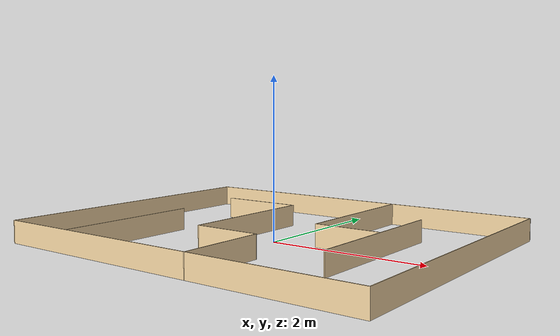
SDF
<?xml version='1.0'?>
<sdf version='1.6'>
  <model name='maze_3'>
    <link name='Wall_10'>
      <pose frame=''>-0.459 0.095453 0 0 0 -1.5708</pose>
      <self_collide>0</self_collide>
      <kinematic>0</kinematic>
      <visual name='Wall_10_Visual'>
        <pose frame=''>0 0 0.14 0 -0 0</pose>
        <geometry>
          <box>
            <size>1.86027 0.01 0.28</size>
          </box>
        </geometry>
        <material>
          <script>
            <uri>file://media/materials/scripts/gazebo.material</uri>
            <name>Gazebo/Grey</name>
          </script>
          <ambient>0.921569 0.807843 0.615686 1</ambient>
          <diffuse>0.7 0.7 0.7 1</diffuse>
          <specular>0.01 0.01 0.01 1</specular>
          <emissive>0 0 0 1</emissive>
        </material>
        <cast_shadows>1</cast_shadows>
        <transparency>0</transparency>
      </visual>
      <collision name='Wall_10_Collision'>
        <laser_retro>0</laser_retro>
        <max_contacts>10</max_contacts>
        <pose frame=''>0 0 0.14 0 -0 0</pose>
        <geometry>
          <box>
            <size>1.86027 0.01 0.28</size>
          </box>
        </geometry>
        <surface>
          <friction>
            <ode>
              <mu>1</mu>
              <mu2>1</mu2>
              <fdir1>0 0 0</fdir1>
              <slip1>0</slip1>
              <slip2>0</slip2>
            </ode>
            <torsional>
              <coefficient>1</coefficient>
              <patch_radius>0</patch_radius>
              <surface_radius>0</surface_radius>
              <use_patch_radius>1</use_patch_radius>
              <ode>
                <slip>0</slip>
              </ode>
            </torsional>
          </friction>
          <bounce>
            <restitution_coefficient>0</restitution_coefficient>
            <threshold>1e+06</threshold>
          </bounce>
          <contact>
            <collide_without_contact>0</collide_without_contact>
            <collide_without_contact_bitmask>1</collide_without_contact_bitmask>
            <collide_bitmask>1</collide_bitmask>
            <ode>
              <soft_cfm>0</soft_cfm>
              <soft_erp>0.2</soft_erp>
              <kp>1e+13</kp>
              <kd>1</kd>
              <max_vel>0.01</max_vel>
              <min_depth>0</min_depth>
            </ode>
            <bullet>
              <split_impulse>1</split_impulse>
              <split_impulse_penetration_threshold>-0.01</split_impulse_penetration_threshold>
              <soft_cfm>0</soft_cfm>
              <soft_erp>0.2</soft_erp>
              <kp>1e+13</kp>
              <kd>1</kd>
            </bullet>
          </contact>
        </surface>
      </collision>
    </link>
    <link name='Wall_11'>
      <pose frame=''>-0.034 -0.829547 0 0 -0 0</pose>
      <self_collide>0</self_collide>
      <kinematic>0</kinematic>
      <visual name='Wall_11_Visual'>
        <pose frame=''>0 0 0.14 0 -0 0</pose>
        <geometry>
          <box>
            <size>0.860223 0.01 0.28</size>
          </box>
        </geometry>
        <material>
          <script>
            <uri>file://media/materials/scripts/gazebo.material</uri>
            <name>Gazebo/Grey</name>
          </script>
          <ambient>0.921569 0.807843 0.615686 1</ambient>
          <diffuse>0.7 0.7 0.7 1</diffuse>
          <specular>0.01 0.01 0.01 1</specular>
          <emissive>0 0 0 1</emissive>
        </material>
        <cast_shadows>1</cast_shadows>
        <transparency>0</transparency>
      </visual>
      <collision name='Wall_11_Collision'>
        <laser_retro>0</laser_retro>
        <max_contacts>10</max_contacts>
        <pose frame=''>0 0 0.14 0 -0 0</pose>
        <geometry>
          <box>
            <size>0.860223 0.01 0.28</size>
          </box>
        </geometry>
        <surface>
          <friction>
            <ode>
              <mu>1</mu>
              <mu2>1</mu2>
              <fdir1>0 0 0</fdir1>
              <slip1>0</slip1>
              <slip2>0</slip2>
            </ode>
            <torsional>
              <coefficient>1</coefficient>
              <patch_radius>0</patch_radius>
              <surface_radius>0</surface_radius>
              <use_patch_radius>1</use_patch_radius>
              <ode>
                <slip>0</slip>
              </ode>
            </torsional>
          </friction>
          <bounce>
            <restitution_coefficient>0</restitution_coefficient>
            <threshold>1e+06</threshold>
          </bounce>
          <contact>
            <collide_without_contact>0</collide_without_contact>
            <collide_without_contact_bitmask>1</collide_without_contact_bitmask>
            <collide_bitmask>1</collide_bitmask>
            <ode>
              <soft_cfm>0</soft_cfm>
              <soft_erp>0.2</soft_erp>
              <kp>1e+13</kp>
              <kd>1</kd>
              <max_vel>0.01</max_vel>
              <min_depth>0</min_depth>
            </ode>
            <bullet>
              <split_impulse>1</split_impulse>
              <split_impulse_penetration_threshold>-0.01</split_impulse_penetration_threshold>
              <soft_cfm>0</soft_cfm>
              <soft_erp>0.2</soft_erp>
              <kp>1e+13</kp>
              <kd>1</kd>
            </bullet>
          </contact>
        </surface>
      </collision>
    </link>
    <link name='Wall_12'>
      <pose frame=''>0.391 -1.37955 0 0 0 -1.5708</pose>
      <self_collide>0</self_collide>
      <kinematic>0</kinematic>
      <visual name='Wall_12_Visual'>
        <pose frame=''>0 0 0.14 0 -0 0</pose>
        <geometry>
          <box>
            <size>1.11027 0.01 0.28</size>
          </box>
        </geometry>
        <material>
          <script>
            <uri>file://media/materials/scripts/gazebo.material</uri>
            <name>Gazebo/Grey</name>
          </script>
          <ambient>0.921569 0.807843 0.615686 1</ambient>
          <diffuse>0.7 0.7 0.7 1</diffuse>
          <specular>0.01 0.01 0.01 1</specular>
          <emissive>0 0 0 1</emissive>
        </material>
        <cast_shadows>1</cast_shadows>
        <transparency>0</transparency>
      </visual>
      <collision name='Wall_12_Collision'>
        <laser_retro>0</laser_retro>
        <max_contacts>10</max_contacts>
        <pose frame=''>0 0 0.14 0 -0 0</pose>
        <geometry>
          <box>
            <size>1.11027 0.01 0.28</size>
          </box>
        </geometry>
        <surface>
          <friction>
            <ode>
              <mu>1</mu>
              <mu2>1</mu2>
              <fdir1>0 0 0</fdir1>
              <slip1>0</slip1>
              <slip2>0</slip2>
            </ode>
            <torsional>
              <coefficient>1</coefficient>
              <patch_radius>0</patch_radius>
              <surface_radius>0</surface_radius>
              <use_patch_radius>1</use_patch_radius>
              <ode>
                <slip>0</slip>
              </ode>
            </torsional>
          </friction>
          <bounce>
            <restitution_coefficient>0</restitution_coefficient>
            <threshold>1e+06</threshold>
          </bounce>
          <contact>
            <collide_without_contact>0</collide_without_contact>
            <collide_without_contact_bitmask>1</collide_without_contact_bitmask>
            <collide_bitmask>1</collide_bitmask>
            <ode>
              <soft_cfm>0</soft_cfm>
              <soft_erp>0.2</soft_erp>
              <kp>1e+13</kp>
              <kd>1</kd>
              <max_vel>0.01</max_vel>
              <min_depth>0</min_depth>
            </ode>
            <bullet>
              <split_impulse>1</split_impulse>
              <split_impulse_penetration_threshold>-0.01</split_impulse_penetration_threshold>
              <soft_cfm>0</soft_cfm>
              <soft_erp>0.2</soft_erp>
              <kp>1e+13</kp>
              <kd>1</kd>
            </bullet>
          </contact>
        </surface>
      </collision>
    </link>
    <link name='Wall_14'>
      <pose frame=''>-1.009 1.02045 0 0 -0 3.14159</pose>
      <self_collide>0</self_collide>
      <kinematic>0</kinematic>
      <visual name='Wall_14_Visual'>
        <pose frame=''>0 0 0.14 0 -0 0</pose>
        <geometry>
          <box>
            <size>1.10978 0.01 0.28</size>
          </box>
        </geometry>
        <material>
          <script>
            <uri>file://media/materials/scripts/gazebo.material</uri>
            <name>Gazebo/Grey</name>
          </script>
          <ambient>0.921569 0.807843 0.615686 1</ambient>
          <diffuse>0.7 0.7 0.7 1</diffuse>
          <specular>0.01 0.01 0.01 1</specular>
          <emissive>0 0 0 1</emissive>
        </material>
        <cast_shadows>1</cast_shadows>
        <transparency>0</transparency>
      </visual>
      <collision name='Wall_14_Collision'>
        <laser_retro>0</laser_retro>
        <max_contacts>10</max_contacts>
        <pose frame=''>0 0 0.14 0 -0 0</pose>
        <geometry>
          <box>
            <size>1.10978 0.01 0.28</size>
          </box>
        </geometry>
        <surface>
          <friction>
            <ode>
              <mu>1</mu>
              <mu2>1</mu2>
              <fdir1>0 0 0</fdir1>
              <slip1>0</slip1>
              <slip2>0</slip2>
            </ode>
            <torsional>
              <coefficient>1</coefficient>
              <patch_radius>0</patch_radius>
              <surface_radius>0</surface_radius>
              <use_patch_radius>1</use_patch_radius>
              <ode>
                <slip>0</slip>
              </ode>
            </torsional>
          </friction>
          <bounce>
            <restitution_coefficient>0</restitution_coefficient>
            <threshold>1e+06</threshold>
          </bounce>
          <contact>
            <collide_without_contact>0</collide_without_contact>
            <collide_without_contact_bitmask>1</collide_without_contact_bitmask>
            <collide_bitmask>1</collide_bitmask>
            <ode>
              <soft_cfm>0</soft_cfm>
              <soft_erp>0.2</soft_erp>
              <kp>1e+13</kp>
              <kd>1</kd>
              <max_vel>0.01</max_vel>
              <min_depth>0</min_depth>
            </ode>
            <bullet>
              <split_impulse>1</split_impulse>
              <split_impulse_penetration_threshold>-0.01</split_impulse_penetration_threshold>
              <soft_cfm>0</soft_cfm>
              <soft_erp>0.2</soft_erp>
              <kp>1e+13</kp>
              <kd>1</kd>
            </bullet>
          </contact>
        </surface>
      </collision>
    </link>
    <link name='Wall_2'>
      <pose frame=''>0 -1.92855 0 0 -0 0</pose>
      <self_collide>0</self_collide>
      <kinematic>0</kinematic>
      <visual name='Wall_2_Visual'>
        <pose frame=''>0 0 0.14 0 -0 0</pose>
        <geometry>
          <box>
            <size>4.86 0.01 0.28</size>
          </box>
        </geometry>
        <material>
          <script>
            <uri>file://media/materials/scripts/gazebo.material</uri>
            <name>Gazebo/Grey</name>
          </script>
          <ambient>0.921569 0.807843 0.615686 1</ambient>
          <diffuse>0.7 0.7 0.7 1</diffuse>
          <specular>0.01 0.01 0.01 1</specular>
          <emissive>0 0 0 1</emissive>
        </material>
        <cast_shadows>1</cast_shadows>
        <transparency>0</transparency>
      </visual>
      <collision name='Wall_2_Collision'>
        <laser_retro>0</laser_retro>
        <max_contacts>10</max_contacts>
        <pose frame=''>0 0 0.14 0 -0 0</pose>
        <geometry>
          <box>
            <size>4.86 0.01 0.28</size>
          </box>
        </geometry>
        <surface>
          <friction>
            <ode>
              <mu>1</mu>
              <mu2>1</mu2>
              <fdir1>0 0 0</fdir1>
              <slip1>0</slip1>
              <slip2>0</slip2>
            </ode>
            <torsional>
              <coefficient>1</coefficient>
              <patch_radius>0</patch_radius>
              <surface_radius>0</surface_radius>
              <use_patch_radius>1</use_patch_radius>
              <ode>
                <slip>0</slip>
              </ode>
            </torsional>
          </friction>
          <bounce>
            <restitution_coefficient>0</restitution_coefficient>
            <threshold>1e+06</threshold>
          </bounce>
          <contact>
            <collide_without_contact>0</collide_without_contact>
            <collide_without_contact_bitmask>1</collide_without_contact_bitmask>
            <collide_bitmask>1</collide_bitmask>
            <ode>
              <soft_cfm>0</soft_cfm>
              <soft_erp>0.2</soft_erp>
              <kp>1e+13</kp>
              <kd>1</kd>
              <max_vel>0.01</max_vel>
              <min_depth>0</min_depth>
            </ode>
            <bullet>
              <split_impulse>1</split_impulse>
              <split_impulse_penetration_threshold>-0.01</split_impulse_penetration_threshold>
              <soft_cfm>0</soft_cfm>
              <soft_erp>0.2</soft_erp>
              <kp>1e+13</kp>
              <kd>1</kd>
            </bullet>
          </contact>
        </surface>
      </collision>
    </link>
    <link name='Wall_20'>
      <pose frame=''>1.41726 -0.00158 0 0 0 -1.5708</pose>
      <self_collide>0</self_collide>
      <kinematic>0</kinematic>
      <visual name='Wall_20_Visual'>
        <pose frame=''>0 0 0.14 0 -0 0</pose>
        <geometry>
          <box>
            <size>2.11 0.01 0.28</size>
          </box>
        </geometry>
        <material>
          <script>
            <uri>file://media/materials/scripts/gazebo.material</uri>
            <name>Gazebo/Grey</name>
          </script>
          <ambient>0.921569 0.807843 0.615686 1</ambient>
          <diffuse>0.7 0.7 0.7 1</diffuse>
          <specular>0.01 0.01 0.01 1</specular>
          <emissive>0 0 0 1</emissive>
        </material>
        <cast_shadows>1</cast_shadows>
        <transparency>0</transparency>
      </visual>
      <collision name='Wall_20_Collision'>
        <laser_retro>0</laser_retro>
        <max_contacts>10</max_contacts>
        <pose frame=''>0 0 0.14 0 -0 0</pose>
        <geometry>
          <box>
            <size>2.11 0.01 0.28</size>
          </box>
        </geometry>
        <surface>
          <friction>
            <ode>
              <mu>1</mu>
              <mu2>1</mu2>
              <fdir1>0 0 0</fdir1>
              <slip1>0</slip1>
              <slip2>0</slip2>
            </ode>
            <torsional>
              <coefficient>1</coefficient>
              <patch_radius>0</patch_radius>
              <surface_radius>0</surface_radius>
              <use_patch_radius>1</use_patch_radius>
              <ode>
                <slip>0</slip>
              </ode>
            </torsional>
          </friction>
          <bounce>
            <restitution_coefficient>0</restitution_coefficient>
            <threshold>1e+06</threshold>
          </bounce>
          <contact>
            <collide_without_contact>0</collide_without_contact>
            <collide_without_contact_bitmask>1</collide_without_contact_bitmask>
            <collide_bitmask>1</collide_bitmask>
            <ode>
              <soft_cfm>0</soft_cfm>
              <soft_erp>0.2</soft_erp>
              <kp>1e+13</kp>
              <kd>1</kd>
              <max_vel>0.01</max_vel>
              <min_depth>0</min_depth>
            </ode>
            <bullet>
              <split_impulse>1</split_impulse>
              <split_impulse_penetration_threshold>-0.01</split_impulse_penetration_threshold>
              <soft_cfm>0</soft_cfm>
              <soft_erp>0.2</soft_erp>
              <kp>1e+13</kp>
              <kd>1</kd>
            </bullet>
          </contact>
        </surface>
      </collision>
    </link>
    <link name='Wall_26'>
      <pose frame=''>0.99 0.060386 0 0 -0 3.14159</pose>
      <self_collide>0</self_collide>
      <kinematic>0</kinematic>
      <visual name='Wall_26_Visual'>
        <pose frame=''>0 0 0.14 0 -0 0</pose>
        <geometry>
          <box>
            <size>0.86 0.01 0.28</size>
          </box>
        </geometry>
        <material>
          <script>
            <uri>file://media/materials/scripts/gazebo.material</uri>
            <name>Gazebo/Grey</name>
          </script>
          <ambient>0.921569 0.807843 0.615686 1</ambient>
          <diffuse>0.7 0.7 0.7 1</diffuse>
          <specular>0.01 0.01 0.01 1</specular>
          <emissive>0 0 0 1</emissive>
        </material>
        <cast_shadows>1</cast_shadows>
        <transparency>0</transparency>
      </visual>
      <collision name='Wall_26_Collision'>
        <laser_retro>0</laser_retro>
        <max_contacts>10</max_contacts>
        <pose frame=''>0 0 0.14 0 -0 0</pose>
        <geometry>
          <box>
            <size>0.86 0.01 0.28</size>
          </box>
        </geometry>
        <surface>
          <friction>
            <ode>
              <mu>1</mu>
              <mu2>1</mu2>
              <fdir1>0 0 0</fdir1>
              <slip1>0</slip1>
              <slip2>0</slip2>
            </ode>
            <torsional>
              <coefficient>1</coefficient>
              <patch_radius>0</patch_radius>
              <surface_radius>0</surface_radius>
              <use_patch_radius>1</use_patch_radius>
              <ode>
                <slip>0</slip>
              </ode>
            </torsional>
          </friction>
          <bounce>
            <restitution_coefficient>0</restitution_coefficient>
            <threshold>1e+06</threshold>
          </bounce>
          <contact>
            <collide_without_contact>0</collide_without_contact>
            <collide_without_contact_bitmask>1</collide_without_contact_bitmask>
            <collide_bitmask>1</collide_bitmask>
            <ode>
              <soft_cfm>0</soft_cfm>
              <soft_erp>0.2</soft_erp>
              <kp>1e+13</kp>
              <kd>1</kd>
              <max_vel>0.01</max_vel>
              <min_depth>0</min_depth>
            </ode>
            <bullet>
              <split_impulse>1</split_impulse>
              <split_impulse_penetration_threshold>-0.01</split_impulse_penetration_threshold>
              <soft_cfm>0</soft_cfm>
              <soft_erp>0.2</soft_erp>
              <kp>1e+13</kp>
              <kd>1</kd>
            </bullet>
          </contact>
        </surface>
      </collision>
    </link>
    <link name='Wall_27'>
      <pose frame=''>0.565 0.989946 0 0 -0 1.5708</pose>
      <self_collide>0</self_collide>
      <kinematic>0</kinematic>
      <visual name='Wall_27_Visual'>
        <pose frame=''>0 0 0.14 0 -0 0</pose>
        <geometry>
          <box>
            <size>1.86046 0.01 0.28</size>
          </box>
        </geometry>
        <material>
          <script>
            <uri>file://media/materials/scripts/gazebo.material</uri>
            <name>Gazebo/Grey</name>
          </script>
          <ambient>0.921569 0.807843 0.615686 1</ambient>
          <diffuse>0.7 0.7 0.7 1</diffuse>
          <specular>0.01 0.01 0.01 1</specular>
          <emissive>0 0 0 1</emissive>
        </material>
        <cast_shadows>1</cast_shadows>
        <transparency>0</transparency>
      </visual>
      <collision name='Wall_27_Collision'>
        <laser_retro>0</laser_retro>
        <max_contacts>10</max_contacts>
        <pose frame=''>0 0 0.14 0 -0 0</pose>
        <geometry>
          <box>
            <size>1.86046 0.01 0.28</size>
          </box>
        </geometry>
        <surface>
          <friction>
            <ode>
              <mu>1</mu>
              <mu2>1</mu2>
              <fdir1>0 0 0</fdir1>
              <slip1>0</slip1>
              <slip2>0</slip2>
            </ode>
            <torsional>
              <coefficient>1</coefficient>
              <patch_radius>0</patch_radius>
              <surface_radius>0</surface_radius>
              <use_patch_radius>1</use_patch_radius>
              <ode>
                <slip>0</slip>
              </ode>
            </torsional>
          </friction>
          <bounce>
            <restitution_coefficient>0</restitution_coefficient>
            <threshold>1e+06</threshold>
          </bounce>
          <contact>
            <collide_without_contact>0</collide_without_contact>
            <collide_without_contact_bitmask>1</collide_without_contact_bitmask>
            <collide_bitmask>1</collide_bitmask>
            <ode>
              <soft_cfm>0</soft_cfm>
              <soft_erp>0.2</soft_erp>
              <kp>1e+13</kp>
              <kd>1</kd>
              <max_vel>0.01</max_vel>
              <min_depth>0</min_depth>
            </ode>
            <bullet>
              <split_impulse>1</split_impulse>
              <split_impulse_penetration_threshold>-0.01</split_impulse_penetration_threshold>
              <soft_cfm>0</soft_cfm>
              <soft_erp>0.2</soft_erp>
              <kp>1e+13</kp>
              <kd>1</kd>
            </bullet>
          </contact>
        </surface>
      </collision>
    </link>
    <link name='Wall_3'>
      <pose frame=''>2.425 -0.003547 0 0 -0 1.5708</pose>
      <self_collide>0</self_collide>
      <kinematic>0</kinematic>
      <visual name='Wall_3_Visual'>
        <pose frame=''>0 0 0.14 0 -0 0</pose>
        <geometry>
          <box>
            <size>3.86 0.01 0.28</size>
          </box>
        </geometry>
        <material>
          <script>
            <uri>file://media/materials/scripts/gazebo.material</uri>
            <name>Gazebo/Grey</name>
          </script>
          <ambient>0.921569 0.807843 0.615686 1</ambient>
          <diffuse>0.7 0.7 0.7 1</diffuse>
          <specular>0.01 0.01 0.01 1</specular>
          <emissive>0 0 0 1</emissive>
        </material>
        <cast_shadows>1</cast_shadows>
        <transparency>0</transparency>
      </visual>
      <collision name='Wall_3_Collision'>
        <laser_retro>0</laser_retro>
        <max_contacts>10</max_contacts>
        <pose frame=''>0 0 0.14 0 -0 0</pose>
        <geometry>
          <box>
            <size>3.86 0.01 0.28</size>
          </box>
        </geometry>
        <surface>
          <friction>
            <ode>
              <mu>1</mu>
              <mu2>1</mu2>
              <fdir1>0 0 0</fdir1>
              <slip1>0</slip1>
              <slip2>0</slip2>
            </ode>
            <torsional>
              <coefficient>1</coefficient>
              <patch_radius>0</patch_radius>
              <surface_radius>0</surface_radius>
              <use_patch_radius>1</use_patch_radius>
              <ode>
                <slip>0</slip>
              </ode>
            </torsional>
          </friction>
          <bounce>
            <restitution_coefficient>0</restitution_coefficient>
            <threshold>1e+06</threshold>
          </bounce>
          <contact>
            <collide_without_contact>0</collide_without_contact>
            <collide_without_contact_bitmask>1</collide_without_contact_bitmask>
            <collide_bitmask>1</collide_bitmask>
            <ode>
              <soft_cfm>0</soft_cfm>
              <soft_erp>0.2</soft_erp>
              <kp>1e+13</kp>
              <kd>1</kd>
              <max_vel>0.01</max_vel>
              <min_depth>0</min_depth>
            </ode>
            <bullet>
              <split_impulse>1</split_impulse>
              <split_impulse_penetration_threshold>-0.01</split_impulse_penetration_threshold>
              <soft_cfm>0</soft_cfm>
              <soft_erp>0.2</soft_erp>
              <kp>1e+13</kp>
              <kd>1</kd>
            </bullet>
          </contact>
        </surface>
      </collision>
    </link>
    <link name='Wall_4'>
      <pose frame=''>0 1.92145 0 0 -0 3.14159</pose>
      <self_collide>0</self_collide>
      <kinematic>0</kinematic>
      <visual name='Wall_4_Visual'>
        <pose frame=''>0 0 0.14 0 -0 0</pose>
        <geometry>
          <box>
            <size>4.86 0.01 0.28</size>
          </box>
        </geometry>
        <material>
          <script>
            <uri>file://media/materials/scripts/gazebo.material</uri>
            <name>Gazebo/Grey</name>
          </script>
          <ambient>0.921569 0.807843 0.615686 1</ambient>
          <diffuse>0.7 0.7 0.7 1</diffuse>
          <specular>0.01 0.01 0.01 1</specular>
          <emissive>0 0 0 1</emissive>
        </material>
        <cast_shadows>1</cast_shadows>
        <transparency>0</transparency>
      </visual>
      <collision name='Wall_4_Collision'>
        <laser_retro>0</laser_retro>
        <max_contacts>10</max_contacts>
        <pose frame=''>0 0 0.14 0 -0 0</pose>
        <geometry>
          <box>
            <size>4.86 0.01 0.28</size>
          </box>
        </geometry>
        <surface>
          <friction>
            <ode>
              <mu>1</mu>
              <mu2>1</mu2>
              <fdir1>0 0 0</fdir1>
              <slip1>0</slip1>
              <slip2>0</slip2>
            </ode>
            <torsional>
              <coefficient>1</coefficient>
              <patch_radius>0</patch_radius>
              <surface_radius>0</surface_radius>
              <use_patch_radius>1</use_patch_radius>
              <ode>
                <slip>0</slip>
              </ode>
            </torsional>
          </friction>
          <bounce>
            <restitution_coefficient>0</restitution_coefficient>
            <threshold>1e+06</threshold>
          </bounce>
          <contact>
            <collide_without_contact>0</collide_without_contact>
            <collide_without_contact_bitmask>1</collide_without_contact_bitmask>
            <collide_bitmask>1</collide_bitmask>
            <ode>
              <soft_cfm>0</soft_cfm>
              <soft_erp>0.2</soft_erp>
              <kp>1e+13</kp>
              <kd>1</kd>
              <max_vel>0.01</max_vel>
              <min_depth>0</min_depth>
            </ode>
            <bullet>
              <split_impulse>1</split_impulse>
              <split_impulse_penetration_threshold>-0.01</split_impulse_penetration_threshold>
              <soft_cfm>0</soft_cfm>
              <soft_erp>0.2</soft_erp>
              <kp>1e+13</kp>
              <kd>1</kd>
            </bullet>
          </contact>
        </surface>
      </collision>
    </link>
    <link name='Wall_5'>
      <pose frame=''>-2.425 -0.003547 0 0 0 -1.5708</pose>
      <self_collide>0</self_collide>
      <kinematic>0</kinematic>
      <visual name='Wall_5_Visual'>
        <pose frame=''>0 0 0.14 0 -0 0</pose>
        <geometry>
          <box>
            <size>3.86023 0.01 0.28</size>
          </box>
        </geometry>
        <material>
          <script>
            <uri>file://media/materials/scripts/gazebo.material</uri>
            <name>Gazebo/Grey</name>
          </script>
          <ambient>0.921569 0.807843 0.615686 1</ambient>
          <diffuse>0.7 0.7 0.7 1</diffuse>
          <specular>0.01 0.01 0.01 1</specular>
          <emissive>0 0 0 1</emissive>
        </material>
        <cast_shadows>1</cast_shadows>
        <transparency>0</transparency>
      </visual>
      <collision name='Wall_5_Collision'>
        <laser_retro>0</laser_retro>
        <max_contacts>10</max_contacts>
        <pose frame=''>0 0 0.14 0 -0 0</pose>
        <geometry>
          <box>
            <size>3.86023 0.01 0.28</size>
          </box>
        </geometry>
        <surface>
          <friction>
            <ode>
              <mu>1</mu>
              <mu2>1</mu2>
              <fdir1>0 0 0</fdir1>
              <slip1>0</slip1>
              <slip2>0</slip2>
            </ode>
            <torsional>
              <coefficient>1</coefficient>
              <patch_radius>0</patch_radius>
              <surface_radius>0</surface_radius>
              <use_patch_radius>1</use_patch_radius>
              <ode>
                <slip>0</slip>
              </ode>
            </torsional>
          </friction>
          <bounce>
            <restitution_coefficient>0</restitution_coefficient>
            <threshold>1e+06</threshold>
          </bounce>
          <contact>
            <collide_without_contact>0</collide_without_contact>
            <collide_without_contact_bitmask>1</collide_without_contact_bitmask>
            <collide_bitmask>1</collide_bitmask>
            <ode>
              <soft_cfm>0</soft_cfm>
              <soft_erp>0.2</soft_erp>
              <kp>1e+13</kp>
              <kd>1</kd>
              <max_vel>0.01</max_vel>
              <min_depth>0</min_depth>
            </ode>
            <bullet>
              <split_impulse>1</split_impulse>
              <split_impulse_penetration_threshold>-0.01</split_impulse_penetration_threshold>
              <soft_cfm>0</soft_cfm>
              <soft_erp>0.2</soft_erp>
              <kp>1e+13</kp>
              <kd>1</kd>
            </bullet>
          </contact>
        </surface>
      </collision>
    </link>
    <link name='Wall_7'>
      <pose frame=''>-1.442 -0.997907 0 0 0 -1.5708</pose>
      <self_collide>0</self_collide>
      <kinematic>0</kinematic>
      <visual name='Wall_7_Visual'>
        <pose frame=''>0 0 0.14 0 -0 0</pose>
        <geometry>
          <box>
            <size>1.85957 0.01 0.28</size>
          </box>
        </geometry>
        <material>
          <script>
            <uri>file://media/materials/scripts/gazebo.material</uri>
            <name>Gazebo/Grey</name>
          </script>
          <ambient>0.921569 0.807843 0.615686 1</ambient>
          <diffuse>0.7 0.7 0.7 1</diffuse>
          <specular>0.01 0.01 0.01 1</specular>
          <emissive>0 0 0 1</emissive>
        </material>
        <cast_shadows>1</cast_shadows>
        <transparency>0</transparency>
      </visual>
      <collision name='Wall_7_Collision'>
        <laser_retro>0</laser_retro>
        <max_contacts>10</max_contacts>
        <pose frame=''>0 0 0.14 0 -0 0</pose>
        <geometry>
          <box>
            <size>1.85957 0.01 0.28</size>
          </box>
        </geometry>
        <surface>
          <friction>
            <ode>
              <mu>1</mu>
              <mu2>1</mu2>
              <fdir1>0 0 0</fdir1>
              <slip1>0</slip1>
              <slip2>0</slip2>
            </ode>
            <torsional>
              <coefficient>1</coefficient>
              <patch_radius>0</patch_radius>
              <surface_radius>0</surface_radius>
              <use_patch_radius>1</use_patch_radius>
              <ode>
                <slip>0</slip>
              </ode>
            </torsional>
          </friction>
          <bounce>
            <restitution_coefficient>0</restitution_coefficient>
            <threshold>1e+06</threshold>
          </bounce>
          <contact>
            <collide_without_contact>0</collide_without_contact>
            <collide_without_contact_bitmask>1</collide_without_contact_bitmask>
            <collide_bitmask>1</collide_bitmask>
            <ode>
              <soft_cfm>0</soft_cfm>
              <soft_erp>0.2</soft_erp>
              <kp>1e+13</kp>
              <kd>1</kd>
              <max_vel>0.01</max_vel>
              <min_depth>0</min_depth>
            </ode>
            <bullet>
              <split_impulse>1</split_impulse>
              <split_impulse_penetration_threshold>-0.01</split_impulse_penetration_threshold>
              <soft_cfm>0</soft_cfm>
              <soft_erp>0.2</soft_erp>
              <kp>1e+13</kp>
              <kd>1</kd>
            </bullet>
          </contact>
        </surface>
      </collision>
    </link>
    <static>1</static>
    <allow_auto_disable>1</allow_auto_disable>
  </model>
</sdf>
